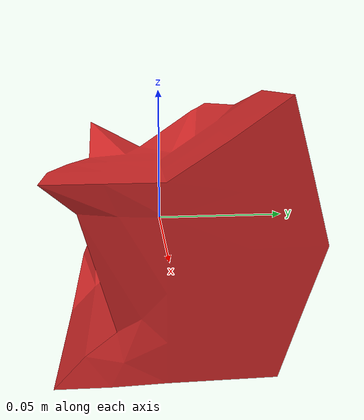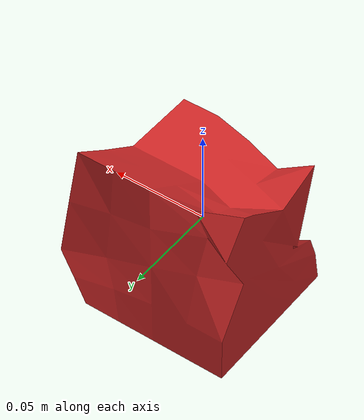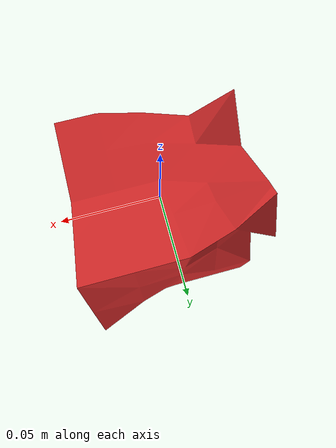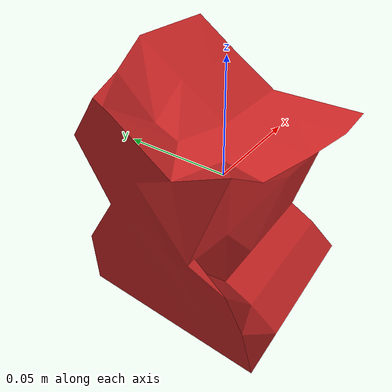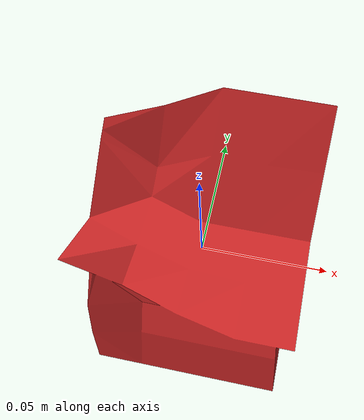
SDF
<?xml version='1.0'?>
<sdf version="1.4">
<model name="random_shape">

    <static>0</static>

    <link name="random_shape">
      <inertial>
        <mass value="0.7"/>
        <!-- Inertial Parameters ixx=iyy=1/12*m*(3r^2+h^2) izz = 1/2mr^2-->
        <inertia
          ixx="0.0007916" ixy="0.0" ixz="0.0"
          iyy="0.0007916" iyz="0.0"
          izz="0.00025"/>
      </inertial>

      <collision name="colision1">
        <pose>0 0 0 0 0 0</pose>
        <geometry>
          <mesh>
            <uri>model://random_shape_box/random_shape.stl</uri>
	    			<scale> 1 1 1 </scale>
          </mesh>
        </geometry>
        <surface>
          <friction>
            <ode>
              <mu>200</mu>
              <mu2>100</mu2>
              <slip1>0.0</slip1>
              <slip2>0.0</slip2>
            </ode>
          </friction>
        </surface>
      </collision>

      <visual name="visual1">
        <pose>0 0 0 0 0 0</pose>
        <geometry>
          <mesh>
            <uri>model://random_shape_box/random_shape.stl</uri>
	    			<scale> 1 1 1 </scale>
          </mesh>
        </geometry>
        <material>
          <script>
            <uri>file://media/materials/scripts/gazebo.material</uri>
            <name>Gazebo/Red</name>
          </script>
        </material>
      </visual>

      <self_collide>0</self_collide>
      <kinematic>1</kinematic>
      <gravity>1</gravity>
    </link>

  </model>
</sdf>
